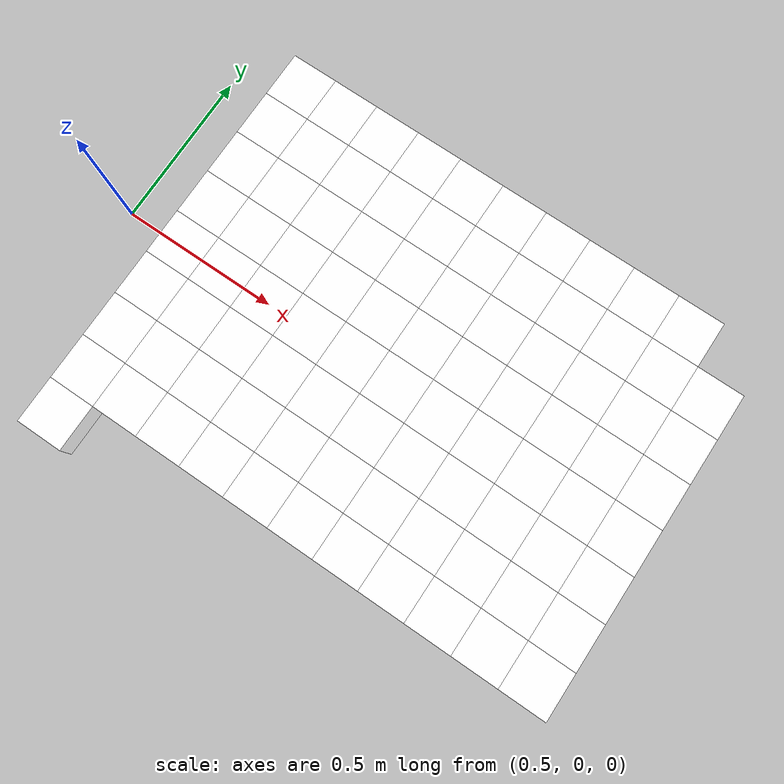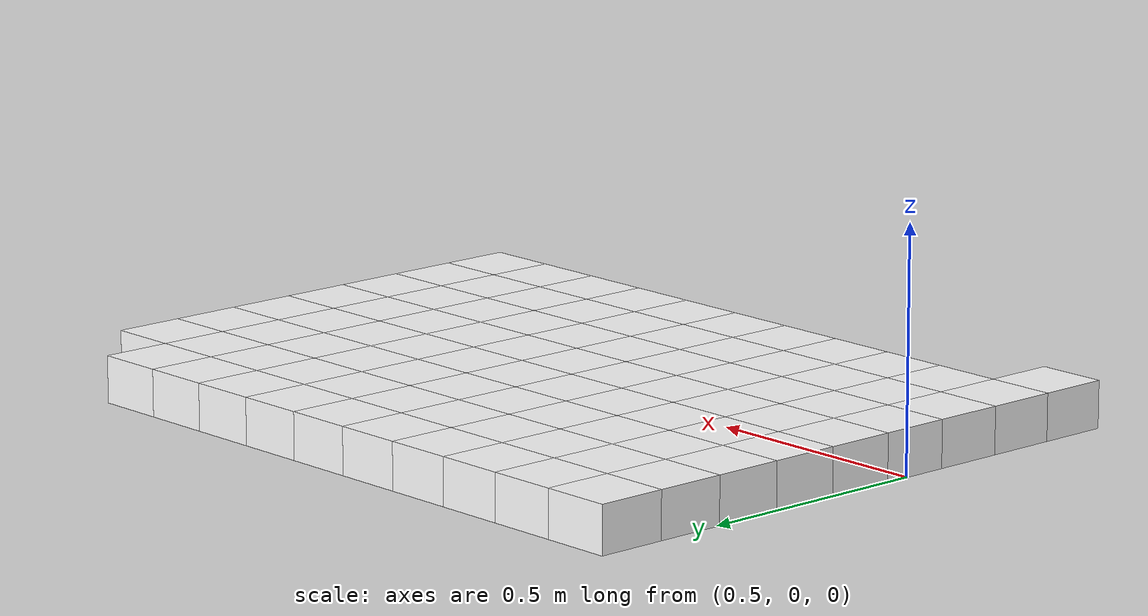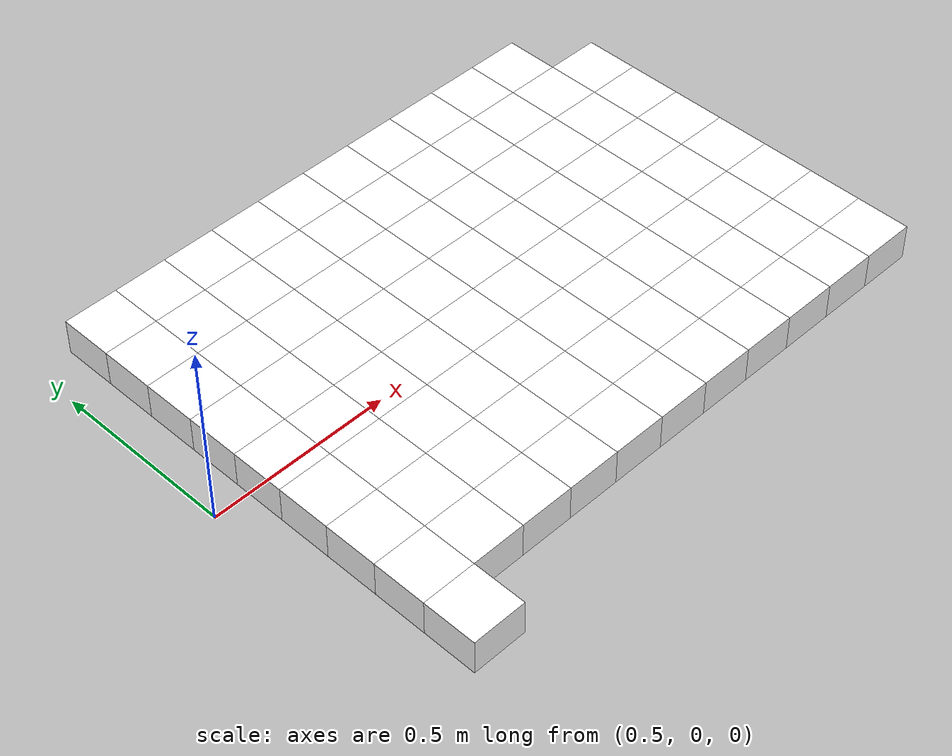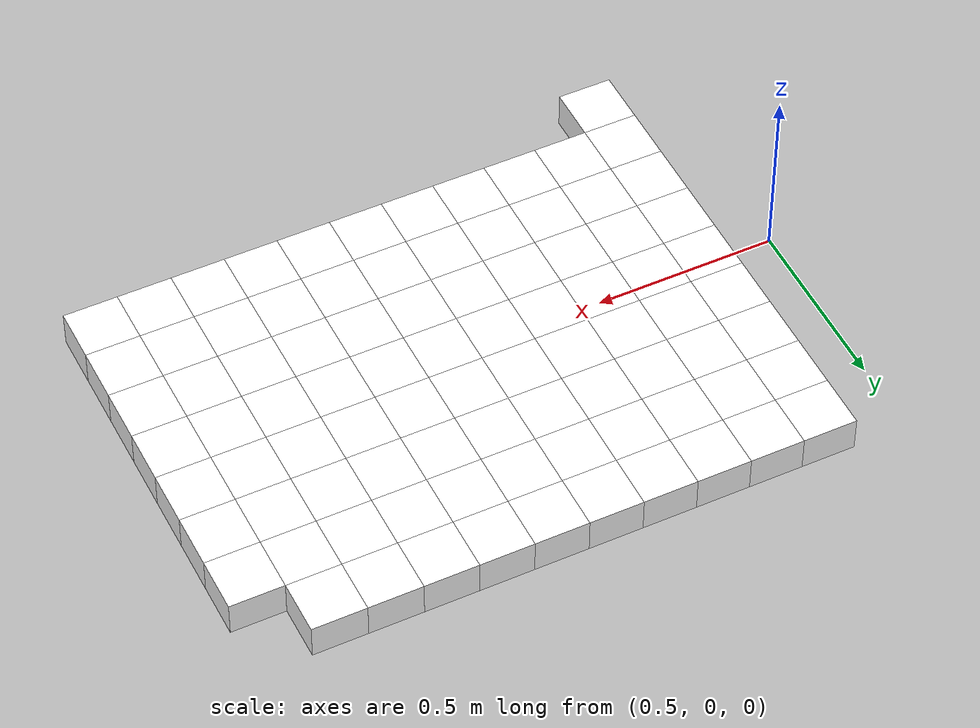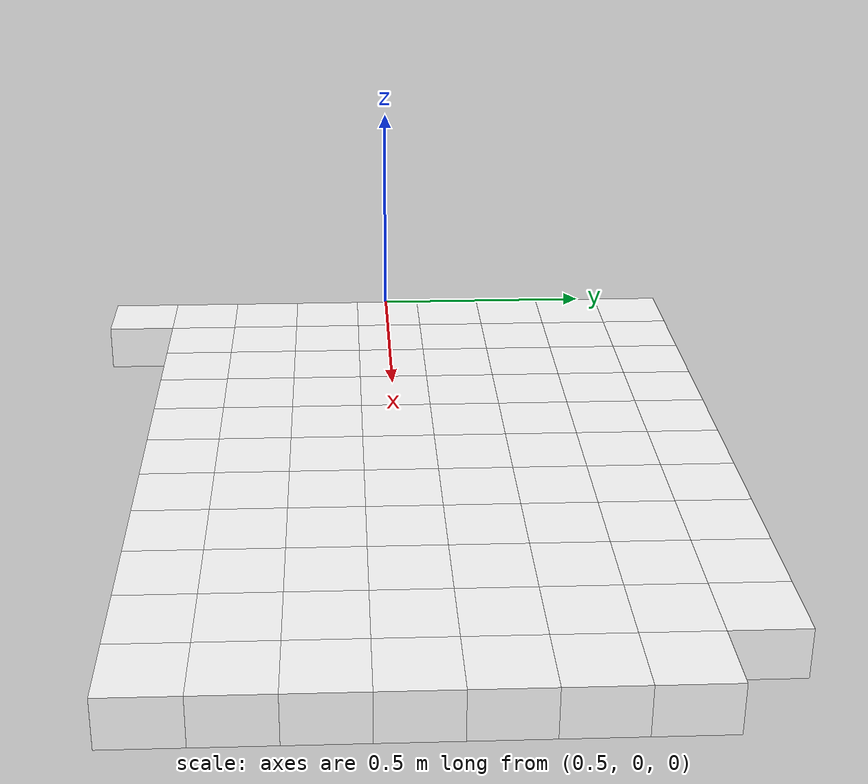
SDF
<sdf version="1.7">
 <world name="default">
  <include><uri>model://sun</uri></include>
  <model name="static_environment">
   <static>true</static>
   <link name="region_360">
    <pose>0.6999999893113622 0.5997597529616542 0.0 0.0 0.0 4.7123</pose>
    <collision name="region_360_collision">
     <geometry><box><size>0.15 0.15 0.1</size></box></geometry>
     <surface><friction><ode><mu>1.0</mu><mu2>1.0</mu2></ode></friction></surface>
    </collision>
    <visual name="region_360_visual">
     <geometry><box><size>0.15 0.15 0.1</size></box></geometry>
     <material><ambient>1.0 1.0 1.0 1.0</ambient><diffuse>1.0 1.0 1.0 1.0</diffuse></material>
    </visual>
   </link>
   <link name="region_361">
    <pose>0.6999866422536765 0.4497597535554674 0.0 0.0 0.0 4.7123</pose>
    <collision name="region_361_collision">
     <geometry><box><size>0.15 0.15 0.1</size></box></geometry>
     <surface><friction><ode><mu>1.0</mu><mu2>1.0</mu2></ode></friction></surface>
    </collision>
    <visual name="region_361_visual">
     <geometry><box><size>0.15 0.15 0.1</size></box></geometry>
     <material><ambient>1.0 1.0 1.0 1.0</ambient><diffuse>1.0 1.0 1.0 1.0</diffuse></material>
    </visual>
   </link>
   <link name="region_362">
    <pose>0.6999732951959903 0.2997597541492806 0.0 0.0 0.0 4.7123</pose>
    <collision name="region_362_collision">
     <geometry><box><size>0.15 0.15 0.1</size></box></geometry>
     <surface><friction><ode><mu>1.0</mu><mu2>1.0</mu2></ode></friction></surface>
    </collision>
    <visual name="region_362_visual">
     <geometry><box><size>0.15 0.15 0.1</size></box></geometry>
     <material><ambient>1.0 1.0 1.0 1.0</ambient><diffuse>1.0 1.0 1.0 1.0</diffuse></material>
    </visual>
   </link>
   <link name="region_363">
    <pose>0.6999599481383045 0.14975975474309378 0.0 0.0 0.0 4.7123</pose>
    <collision name="region_363_collision">
     <geometry><box><size>0.15 0.15 0.1</size></box></geometry>
     <surface><friction><ode><mu>1.0</mu><mu2>1.0</mu2></ode></friction></surface>
    </collision>
    <visual name="region_363_visual">
     <geometry><box><size>0.15 0.15 0.1</size></box></geometry>
     <material><ambient>1.0 1.0 1.0 1.0</ambient><diffuse>1.0 1.0 1.0 1.0</diffuse></material>
    </visual>
   </link>
   <link name="region_364">
    <pose>0.6999466010806188 -0.00024024466309313652 0.0 0.0 0.0 4.7123</pose>
    <collision name="region_364_collision">
     <geometry><box><size>0.15 0.15 0.1</size></box></geometry>
     <surface><friction><ode><mu>1.0</mu><mu2>1.0</mu2></ode></friction></surface>
    </collision>
    <visual name="region_364_visual">
     <geometry><box><size>0.15 0.15 0.1</size></box></geometry>
     <material><ambient>1.0 1.0 1.0 1.0</ambient><diffuse>1.0 1.0 1.0 1.0</diffuse></material>
    </visual>
   </link>
   <link name="region_365">
    <pose>0.6999332540229326 -0.15024024406927994 0.0 0.0 0.0 4.7123</pose>
    <collision name="region_365_collision">
     <geometry><box><size>0.15 0.15 0.1</size></box></geometry>
     <surface><friction><ode><mu>1.0</mu><mu2>1.0</mu2></ode></friction></surface>
    </collision>
    <visual name="region_365_visual">
     <geometry><box><size>0.15 0.15 0.1</size></box></geometry>
     <material><ambient>1.0 1.0 1.0 1.0</ambient><diffuse>1.0 1.0 1.0 1.0</diffuse></material>
    </visual>
   </link>
   <link name="region_366">
    <pose>0.6999199069652469 -0.30024024347546685 0.0 0.0 0.0 4.7123</pose>
    <collision name="region_366_collision">
     <geometry><box><size>0.15 0.15 0.1</size></box></geometry>
     <surface><friction><ode><mu>1.0</mu><mu2>1.0</mu2></ode></friction></surface>
    </collision>
    <visual name="region_366_visual">
     <geometry><box><size>0.15 0.15 0.1</size></box></geometry>
     <material><ambient>1.0 1.0 1.0 1.0</ambient><diffuse>1.0 1.0 1.0 1.0</diffuse></material>
    </visual>
   </link>
   <link name="region_367">
    <pose>0.6999065599075611 -0.45024024288165376 0.0 0.0 0.0 4.7123</pose>
    <collision name="region_367_collision">
     <geometry><box><size>0.15 0.15 0.1</size></box></geometry>
     <surface><friction><ode><mu>1.0</mu><mu2>1.0</mu2></ode></friction></surface>
    </collision>
    <visual name="region_367_visual">
     <geometry><box><size>0.15 0.15 0.1</size></box></geometry>
     <material><ambient>1.0 1.0 1.0 1.0</ambient><diffuse>1.0 1.0 1.0 1.0</diffuse></material>
    </visual>
   </link>
   <link name="region_368">
    <pose>0.6998932128498754 -0.6002402422878405 0.0 0.0 0.0 4.7123</pose>
    <collision name="region_368_collision">
     <geometry><box><size>0.15 0.15 0.1</size></box></geometry>
     <surface><friction><ode><mu>1.0</mu><mu2>1.0</mu2></ode></friction></surface>
    </collision>
    <visual name="region_368_visual">
     <geometry><box><size>0.15 0.15 0.1</size></box></geometry>
     <material><ambient>1.0 1.0 1.0 1.0</ambient><diffuse>1.0 1.0 1.0 1.0</diffuse></material>
    </visual>
   </link>
   <link name="region_380">
    <pose>0.8499999887175491 0.5997464059039683 0.0 0.0 0.0 4.7123</pose>
    <collision name="region_380_collision">
     <geometry><box><size>0.15 0.15 0.1</size></box></geometry>
     <surface><friction><ode><mu>1.0</mu><mu2>1.0</mu2></ode></friction></surface>
    </collision>
    <visual name="region_380_visual">
     <geometry><box><size>0.15 0.15 0.1</size></box></geometry>
     <material><ambient>1.0 1.0 1.0 1.0</ambient><diffuse>1.0 1.0 1.0 1.0</diffuse></material>
    </visual>
   </link>
   <link name="region_381">
    <pose>0.8499866416598634 0.4497464064977815 0.0 0.0 0.0 4.7123</pose>
    <collision name="region_381_collision">
     <geometry><box><size>0.15 0.15 0.1</size></box></geometry>
     <surface><friction><ode><mu>1.0</mu><mu2>1.0</mu2></ode></friction></surface>
    </collision>
    <visual name="region_381_visual">
     <geometry><box><size>0.15 0.15 0.1</size></box></geometry>
     <material><ambient>1.0 1.0 1.0 1.0</ambient><diffuse>1.0 1.0 1.0 1.0</diffuse></material>
    </visual>
   </link>
   <link name="region_382">
    <pose>0.8499732946021772 0.29974640709159467 0.0 0.0 0.0 4.7123</pose>
    <collision name="region_382_collision">
     <geometry><box><size>0.15 0.15 0.1</size></box></geometry>
     <surface><friction><ode><mu>1.0</mu><mu2>1.0</mu2></ode></friction></surface>
    </collision>
    <visual name="region_382_visual">
     <geometry><box><size>0.15 0.15 0.1</size></box></geometry>
     <material><ambient>1.0 1.0 1.0 1.0</ambient><diffuse>1.0 1.0 1.0 1.0</diffuse></material>
    </visual>
   </link>
   <link name="region_383">
    <pose>0.8499599475444914 0.14974640768540787 0.0 0.0 0.0 4.7123</pose>
    <collision name="region_383_collision">
     <geometry><box><size>0.15 0.15 0.1</size></box></geometry>
     <surface><friction><ode><mu>1.0</mu><mu2>1.0</mu2></ode></friction></surface>
    </collision>
    <visual name="region_383_visual">
     <geometry><box><size>0.15 0.15 0.1</size></box></geometry>
     <material><ambient>1.0 1.0 1.0 1.0</ambient><diffuse>1.0 1.0 1.0 1.0</diffuse></material>
    </visual>
   </link>
   <link name="region_384">
    <pose>0.8499466004868057 -0.0002535917207789895 0.0 0.0 0.0 4.7123</pose>
    <collision name="region_384_collision">
     <geometry><box><size>0.15 0.15 0.1</size></box></geometry>
     <surface><friction><ode><mu>1.0</mu><mu2>1.0</mu2></ode></friction></surface>
    </collision>
    <visual name="region_384_visual">
     <geometry><box><size>0.15 0.15 0.1</size></box></geometry>
     <material><ambient>1.0 1.0 1.0 1.0</ambient><diffuse>1.0 1.0 1.0 1.0</diffuse></material>
    </visual>
   </link>
   <link name="region_385">
    <pose>0.8499332534291195 -0.1502535911269658 0.0 0.0 0.0 4.7123</pose>
    <collision name="region_385_collision">
     <geometry><box><size>0.15 0.15 0.1</size></box></geometry>
     <surface><friction><ode><mu>1.0</mu><mu2>1.0</mu2></ode></friction></surface>
    </collision>
    <visual name="region_385_visual">
     <geometry><box><size>0.15 0.15 0.1</size></box></geometry>
     <material><ambient>1.0 1.0 1.0 1.0</ambient><diffuse>1.0 1.0 1.0 1.0</diffuse></material>
    </visual>
   </link>
   <link name="region_386">
    <pose>0.8499199063714338 -0.3002535905331527 0.0 0.0 0.0 4.7123</pose>
    <collision name="region_386_collision">
     <geometry><box><size>0.15 0.15 0.1</size></box></geometry>
     <surface><friction><ode><mu>1.0</mu><mu2>1.0</mu2></ode></friction></surface>
    </collision>
    <visual name="region_386_visual">
     <geometry><box><size>0.15 0.15 0.1</size></box></geometry>
     <material><ambient>1.0 1.0 1.0 1.0</ambient><diffuse>1.0 1.0 1.0 1.0</diffuse></material>
    </visual>
   </link>
   <link name="region_387">
    <pose>0.849906559313748 -0.4502535899393395 0.0 0.0 0.0 4.7123</pose>
    <collision name="region_387_collision">
     <geometry><box><size>0.15 0.15 0.1</size></box></geometry>
     <surface><friction><ode><mu>1.0</mu><mu2>1.0</mu2></ode></friction></surface>
    </collision>
    <visual name="region_387_visual">
     <geometry><box><size>0.15 0.15 0.1</size></box></geometry>
     <material><ambient>1.0 1.0 1.0 1.0</ambient><diffuse>1.0 1.0 1.0 1.0</diffuse></material>
    </visual>
   </link>
   <link name="region_400">
    <pose>0.999999988123736 0.5997330588462825 0.0 0.0 0.0 4.7123</pose>
    <collision name="region_400_collision">
     <geometry><box><size>0.15 0.15 0.1</size></box></geometry>
     <surface><friction><ode><mu>1.0</mu><mu2>1.0</mu2></ode></friction></surface>
    </collision>
    <visual name="region_400_visual">
     <geometry><box><size>0.15 0.15 0.1</size></box></geometry>
     <material><ambient>1.0 1.0 1.0 1.0</ambient><diffuse>1.0 1.0 1.0 1.0</diffuse></material>
    </visual>
   </link>
   <link name="region_401">
    <pose>0.9999866410660503 0.4497330594400956 0.0 0.0 0.0 4.7123</pose>
    <collision name="region_401_collision">
     <geometry><box><size>0.15 0.15 0.1</size></box></geometry>
     <surface><friction><ode><mu>1.0</mu><mu2>1.0</mu2></ode></friction></surface>
    </collision>
    <visual name="region_401_visual">
     <geometry><box><size>0.15 0.15 0.1</size></box></geometry>
     <material><ambient>1.0 1.0 1.0 1.0</ambient><diffuse>1.0 1.0 1.0 1.0</diffuse></material>
    </visual>
   </link>
   <link name="region_402">
    <pose>0.9999732940083641 0.2997330600339088 0.0 0.0 0.0 4.7123</pose>
    <collision name="region_402_collision">
     <geometry><box><size>0.15 0.15 0.1</size></box></geometry>
     <surface><friction><ode><mu>1.0</mu><mu2>1.0</mu2></ode></friction></surface>
    </collision>
    <visual name="region_402_visual">
     <geometry><box><size>0.15 0.15 0.1</size></box></geometry>
     <material><ambient>1.0 1.0 1.0 1.0</ambient><diffuse>1.0 1.0 1.0 1.0</diffuse></material>
    </visual>
   </link>
   <link name="region_403">
    <pose>0.9999599469506784 0.14973306062772201 0.0 0.0 0.0 4.7123</pose>
    <collision name="region_403_collision">
     <geometry><box><size>0.15 0.15 0.1</size></box></geometry>
     <surface><friction><ode><mu>1.0</mu><mu2>1.0</mu2></ode></friction></surface>
    </collision>
    <visual name="region_403_visual">
     <geometry><box><size>0.15 0.15 0.1</size></box></geometry>
     <material><ambient>1.0 1.0 1.0 1.0</ambient><diffuse>1.0 1.0 1.0 1.0</diffuse></material>
    </visual>
   </link>
   <link name="region_404">
    <pose>0.9999465998929926 -0.0002669387784648425 0.0 0.0 0.0 4.7123</pose>
    <collision name="region_404_collision">
     <geometry><box><size>0.15 0.15 0.1</size></box></geometry>
     <surface><friction><ode><mu>1.0</mu><mu2>1.0</mu2></ode></friction></surface>
    </collision>
    <visual name="region_404_visual">
     <geometry><box><size>0.15 0.15 0.1</size></box></geometry>
     <material><ambient>1.0 1.0 1.0 1.0</ambient><diffuse>1.0 1.0 1.0 1.0</diffuse></material>
    </visual>
   </link>
   <link name="region_405">
    <pose>0.9999332528353064 -0.15026693818465164 0.0 0.0 0.0 4.7123</pose>
    <collision name="region_405_collision">
     <geometry><box><size>0.15 0.15 0.1</size></box></geometry>
     <surface><friction><ode><mu>1.0</mu><mu2>1.0</mu2></ode></friction></surface>
    </collision>
    <visual name="region_405_visual">
     <geometry><box><size>0.15 0.15 0.1</size></box></geometry>
     <material><ambient>1.0 1.0 1.0 1.0</ambient><diffuse>1.0 1.0 1.0 1.0</diffuse></material>
    </visual>
   </link>
   <link name="region_406">
    <pose>0.9999199057776207 -0.30026693759083856 0.0 0.0 0.0 4.7123</pose>
    <collision name="region_406_collision">
     <geometry><box><size>0.15 0.15 0.1</size></box></geometry>
     <surface><friction><ode><mu>1.0</mu><mu2>1.0</mu2></ode></friction></surface>
    </collision>
    <visual name="region_406_visual">
     <geometry><box><size>0.15 0.15 0.1</size></box></geometry>
     <material><ambient>1.0 1.0 1.0 1.0</ambient><diffuse>1.0 1.0 1.0 1.0</diffuse></material>
    </visual>
   </link>
   <link name="region_407">
    <pose>0.999906558719935 -0.45026693699702547 0.0 0.0 0.0 4.7123</pose>
    <collision name="region_407_collision">
     <geometry><box><size>0.15 0.15 0.1</size></box></geometry>
     <surface><friction><ode><mu>1.0</mu><mu2>1.0</mu2></ode></friction></surface>
    </collision>
    <visual name="region_407_visual">
     <geometry><box><size>0.15 0.15 0.1</size></box></geometry>
     <material><ambient>1.0 1.0 1.0 1.0</ambient><diffuse>1.0 1.0 1.0 1.0</diffuse></material>
    </visual>
   </link>
   <link name="region_420">
    <pose>1.1499999875299225 0.5997197117885966 0.0 0.0 0.0 4.7123</pose>
    <collision name="region_420_collision">
     <geometry><box><size>0.15 0.15 0.1</size></box></geometry>
     <surface><friction><ode><mu>1.0</mu><mu2>1.0</mu2></ode></friction></surface>
    </collision>
    <visual name="region_420_visual">
     <geometry><box><size>0.15 0.15 0.1</size></box></geometry>
     <material><ambient>1.0 1.0 1.0 1.0</ambient><diffuse>1.0 1.0 1.0 1.0</diffuse></material>
    </visual>
   </link>
   <link name="region_421">
    <pose>1.1499866404722368 0.44971971238240976 0.0 0.0 0.0 4.7123</pose>
    <collision name="region_421_collision">
     <geometry><box><size>0.15 0.15 0.1</size></box></geometry>
     <surface><friction><ode><mu>1.0</mu><mu2>1.0</mu2></ode></friction></surface>
    </collision>
    <visual name="region_421_visual">
     <geometry><box><size>0.15 0.15 0.1</size></box></geometry>
     <material><ambient>1.0 1.0 1.0 1.0</ambient><diffuse>1.0 1.0 1.0 1.0</diffuse></material>
    </visual>
   </link>
   <link name="region_422">
    <pose>1.1499732934145506 0.2997197129762229 0.0 0.0 0.0 4.7123</pose>
    <collision name="region_422_collision">
     <geometry><box><size>0.15 0.15 0.1</size></box></geometry>
     <surface><friction><ode><mu>1.0</mu><mu2>1.0</mu2></ode></friction></surface>
    </collision>
    <visual name="region_422_visual">
     <geometry><box><size>0.15 0.15 0.1</size></box></geometry>
     <material><ambient>1.0 1.0 1.0 1.0</ambient><diffuse>1.0 1.0 1.0 1.0</diffuse></material>
    </visual>
   </link>
   <link name="region_423">
    <pose>1.1499599463568648 0.1497197135700361 0.0 0.0 0.0 4.7123</pose>
    <collision name="region_423_collision">
     <geometry><box><size>0.15 0.15 0.1</size></box></geometry>
     <surface><friction><ode><mu>1.0</mu><mu2>1.0</mu2></ode></friction></surface>
    </collision>
    <visual name="region_423_visual">
     <geometry><box><size>0.15 0.15 0.1</size></box></geometry>
     <material><ambient>1.0 1.0 1.0 1.0</ambient><diffuse>1.0 1.0 1.0 1.0</diffuse></material>
    </visual>
   </link>
   <link name="region_424">
    <pose>1.149946599299179 -0.00028028583615069547 0.0 0.0 0.0 4.7123</pose>
    <collision name="region_424_collision">
     <geometry><box><size>0.15 0.15 0.1</size></box></geometry>
     <surface><friction><ode><mu>1.0</mu><mu2>1.0</mu2></ode></friction></surface>
    </collision>
    <visual name="region_424_visual">
     <geometry><box><size>0.15 0.15 0.1</size></box></geometry>
     <material><ambient>1.0 1.0 1.0 1.0</ambient><diffuse>1.0 1.0 1.0 1.0</diffuse></material>
    </visual>
   </link>
   <link name="region_425">
    <pose>1.149933252241493 -0.1502802852423375 0.0 0.0 0.0 4.7123</pose>
    <collision name="region_425_collision">
     <geometry><box><size>0.15 0.15 0.1</size></box></geometry>
     <surface><friction><ode><mu>1.0</mu><mu2>1.0</mu2></ode></friction></surface>
    </collision>
    <visual name="region_425_visual">
     <geometry><box><size>0.15 0.15 0.1</size></box></geometry>
     <material><ambient>1.0 1.0 1.0 1.0</ambient><diffuse>1.0 1.0 1.0 1.0</diffuse></material>
    </visual>
   </link>
   <link name="region_426">
    <pose>1.1499199051838072 -0.3002802846485244 0.0 0.0 0.0 4.7123</pose>
    <collision name="region_426_collision">
     <geometry><box><size>0.15 0.15 0.1</size></box></geometry>
     <surface><friction><ode><mu>1.0</mu><mu2>1.0</mu2></ode></friction></surface>
    </collision>
    <visual name="region_426_visual">
     <geometry><box><size>0.15 0.15 0.1</size></box></geometry>
     <material><ambient>1.0 1.0 1.0 1.0</ambient><diffuse>1.0 1.0 1.0 1.0</diffuse></material>
    </visual>
   </link>
   <link name="region_427">
    <pose>1.1499065581261214 -0.45028028405471143 0.0 0.0 0.0 4.7123</pose>
    <collision name="region_427_collision">
     <geometry><box><size>0.15 0.15 0.1</size></box></geometry>
     <surface><friction><ode><mu>1.0</mu><mu2>1.0</mu2></ode></friction></surface>
    </collision>
    <visual name="region_427_visual">
     <geometry><box><size>0.15 0.15 0.1</size></box></geometry>
     <material><ambient>1.0 1.0 1.0 1.0</ambient><diffuse>1.0 1.0 1.0 1.0</diffuse></material>
    </visual>
   </link>
   <link name="region_440">
    <pose>1.2999999869361094 0.5997063647309107 0.0 0.0 0.0 4.7123</pose>
    <collision name="region_440_collision">
     <geometry><box><size>0.15 0.15 0.1</size></box></geometry>
     <surface><friction><ode><mu>1.0</mu><mu2>1.0</mu2></ode></friction></surface>
    </collision>
    <visual name="region_440_visual">
     <geometry><box><size>0.15 0.15 0.1</size></box></geometry>
     <material><ambient>1.0 1.0 1.0 1.0</ambient><diffuse>1.0 1.0 1.0 1.0</diffuse></material>
    </visual>
   </link>
   <link name="region_441">
    <pose>1.2999866398784237 0.44970636532472386 0.0 0.0 0.0 4.7123</pose>
    <collision name="region_441_collision">
     <geometry><box><size>0.15 0.15 0.1</size></box></geometry>
     <surface><friction><ode><mu>1.0</mu><mu2>1.0</mu2></ode></friction></surface>
    </collision>
    <visual name="region_441_visual">
     <geometry><box><size>0.15 0.15 0.1</size></box></geometry>
     <material><ambient>1.0 1.0 1.0 1.0</ambient><diffuse>1.0 1.0 1.0 1.0</diffuse></material>
    </visual>
   </link>
   <link name="region_442">
    <pose>1.2999732928207375 0.29970636591853705 0.0 0.0 0.0 4.7123</pose>
    <collision name="region_442_collision">
     <geometry><box><size>0.15 0.15 0.1</size></box></geometry>
     <surface><friction><ode><mu>1.0</mu><mu2>1.0</mu2></ode></friction></surface>
    </collision>
    <visual name="region_442_visual">
     <geometry><box><size>0.15 0.15 0.1</size></box></geometry>
     <material><ambient>1.0 1.0 1.0 1.0</ambient><diffuse>1.0 1.0 1.0 1.0</diffuse></material>
    </visual>
   </link>
   <link name="region_443">
    <pose>1.2999599457630517 0.14970636651235025 0.0 0.0 0.0 4.7123</pose>
    <collision name="region_443_collision">
     <geometry><box><size>0.15 0.15 0.1</size></box></geometry>
     <surface><friction><ode><mu>1.0</mu><mu2>1.0</mu2></ode></friction></surface>
    </collision>
    <visual name="region_443_visual">
     <geometry><box><size>0.15 0.15 0.1</size></box></geometry>
     <material><ambient>1.0 1.0 1.0 1.0</ambient><diffuse>1.0 1.0 1.0 1.0</diffuse></material>
    </visual>
   </link>
   <link name="region_444">
    <pose>1.299946598705366 -0.00029363289383665947 0.0 0.0 0.0 4.7123</pose>
    <collision name="region_444_collision">
     <geometry><box><size>0.15 0.15 0.1</size></box></geometry>
     <surface><friction><ode><mu>1.0</mu><mu2>1.0</mu2></ode></friction></surface>
    </collision>
    <visual name="region_444_visual">
     <geometry><box><size>0.15 0.15 0.1</size></box></geometry>
     <material><ambient>1.0 1.0 1.0 1.0</ambient><diffuse>1.0 1.0 1.0 1.0</diffuse></material>
    </visual>
   </link>
   <link name="region_445">
    <pose>1.2999332516476798 -0.15029363230002346 0.0 0.0 0.0 4.7123</pose>
    <collision name="region_445_collision">
     <geometry><box><size>0.15 0.15 0.1</size></box></geometry>
     <surface><friction><ode><mu>1.0</mu><mu2>1.0</mu2></ode></friction></surface>
    </collision>
    <visual name="region_445_visual">
     <geometry><box><size>0.15 0.15 0.1</size></box></geometry>
     <material><ambient>1.0 1.0 1.0 1.0</ambient><diffuse>1.0 1.0 1.0 1.0</diffuse></material>
    </visual>
   </link>
   <link name="region_446">
    <pose>1.299919904589994 -0.3002936317062104 0.0 0.0 0.0 4.7123</pose>
    <collision name="region_446_collision">
     <geometry><box><size>0.15 0.15 0.1</size></box></geometry>
     <surface><friction><ode><mu>1.0</mu><mu2>1.0</mu2></ode></friction></surface>
    </collision>
    <visual name="region_446_visual">
     <geometry><box><size>0.15 0.15 0.1</size></box></geometry>
     <material><ambient>1.0 1.0 1.0 1.0</ambient><diffuse>1.0 1.0 1.0 1.0</diffuse></material>
    </visual>
   </link>
   <link name="region_447">
    <pose>1.2999065575323083 -0.4502936311123972 0.0 0.0 0.0 4.7123</pose>
    <collision name="region_447_collision">
     <geometry><box><size>0.15 0.15 0.1</size></box></geometry>
     <surface><friction><ode><mu>1.0</mu><mu2>1.0</mu2></ode></friction></surface>
    </collision>
    <visual name="region_447_visual">
     <geometry><box><size>0.15 0.15 0.1</size></box></geometry>
     <material><ambient>1.0 1.0 1.0 1.0</ambient><diffuse>1.0 1.0 1.0 1.0</diffuse></material>
    </visual>
   </link>
   <link name="region_460">
    <pose>1.4499999863422959 0.5996930176732248 0.0 0.0 0.0 4.7123</pose>
    <collision name="region_460_collision">
     <geometry><box><size>0.15 0.15 0.1</size></box></geometry>
     <surface><friction><ode><mu>1.0</mu><mu2>1.0</mu2></ode></friction></surface>
    </collision>
    <visual name="region_460_visual">
     <geometry><box><size>0.15 0.15 0.1</size></box></geometry>
     <material><ambient>1.0 1.0 1.0 1.0</ambient><diffuse>1.0 1.0 1.0 1.0</diffuse></material>
    </visual>
   </link>
   <link name="region_461">
    <pose>1.4499866392846101 0.449693018267038 0.0 0.0 0.0 4.7123</pose>
    <collision name="region_461_collision">
     <geometry><box><size>0.15 0.15 0.1</size></box></geometry>
     <surface><friction><ode><mu>1.0</mu><mu2>1.0</mu2></ode></friction></surface>
    </collision>
    <visual name="region_461_visual">
     <geometry><box><size>0.15 0.15 0.1</size></box></geometry>
     <material><ambient>1.0 1.0 1.0 1.0</ambient><diffuse>1.0 1.0 1.0 1.0</diffuse></material>
    </visual>
   </link>
   <link name="region_462">
    <pose>1.449973292226924 0.29969301886085115 0.0 0.0 0.0 4.7123</pose>
    <collision name="region_462_collision">
     <geometry><box><size>0.15 0.15 0.1</size></box></geometry>
     <surface><friction><ode><mu>1.0</mu><mu2>1.0</mu2></ode></friction></surface>
    </collision>
    <visual name="region_462_visual">
     <geometry><box><size>0.15 0.15 0.1</size></box></geometry>
     <material><ambient>1.0 1.0 1.0 1.0</ambient><diffuse>1.0 1.0 1.0 1.0</diffuse></material>
    </visual>
   </link>
   <link name="region_463">
    <pose>1.4499599451692382 0.14969301945466434 0.0 0.0 0.0 4.7123</pose>
    <collision name="region_463_collision">
     <geometry><box><size>0.15 0.15 0.1</size></box></geometry>
     <surface><friction><ode><mu>1.0</mu><mu2>1.0</mu2></ode></friction></surface>
    </collision>
    <visual name="region_463_visual">
     <geometry><box><size>0.15 0.15 0.1</size></box></geometry>
     <material><ambient>1.0 1.0 1.0 1.0</ambient><diffuse>1.0 1.0 1.0 1.0</diffuse></material>
    </visual>
   </link>
   <link name="region_464">
    <pose>1.4499465981115525 -0.00030697995152251245 0.0 0.0 0.0 4.7123</pose>
    <collision name="region_464_collision">
     <geometry><box><size>0.15 0.15 0.1</size></box></geometry>
     <surface><friction><ode><mu>1.0</mu><mu2>1.0</mu2></ode></friction></surface>
    </collision>
    <visual name="region_464_visual">
     <geometry><box><size>0.15 0.15 0.1</size></box></geometry>
     <material><ambient>1.0 1.0 1.0 1.0</ambient><diffuse>1.0 1.0 1.0 1.0</diffuse></material>
    </visual>
   </link>
   <link name="region_465">
    <pose>1.4499332510538663 -0.1503069793577093 0.0 0.0 0.0 4.7123</pose>
    <collision name="region_465_collision">
     <geometry><box><size>0.15 0.15 0.1</size></box></geometry>
     <surface><friction><ode><mu>1.0</mu><mu2>1.0</mu2></ode></friction></surface>
    </collision>
    <visual name="region_465_visual">
     <geometry><box><size>0.15 0.15 0.1</size></box></geometry>
     <material><ambient>1.0 1.0 1.0 1.0</ambient><diffuse>1.0 1.0 1.0 1.0</diffuse></material>
    </visual>
   </link>
   <link name="region_466">
    <pose>1.4499199039961805 -0.3003069787638962 0.0 0.0 0.0 4.7123</pose>
    <collision name="region_466_collision">
     <geometry><box><size>0.15 0.15 0.1</size></box></geometry>
     <surface><friction><ode><mu>1.0</mu><mu2>1.0</mu2></ode></friction></surface>
    </collision>
    <visual name="region_466_visual">
     <geometry><box><size>0.15 0.15 0.1</size></box></geometry>
     <material><ambient>1.0 1.0 1.0 1.0</ambient><diffuse>1.0 1.0 1.0 1.0</diffuse></material>
    </visual>
   </link>
   <link name="region_467">
    <pose>1.4499065569384948 -0.45030697817008314 0.0 0.0 0.0 4.7123</pose>
    <collision name="region_467_collision">
     <geometry><box><size>0.15 0.15 0.1</size></box></geometry>
     <surface><friction><ode><mu>1.0</mu><mu2>1.0</mu2></ode></friction></surface>
    </collision>
    <visual name="region_467_visual">
     <geometry><box><size>0.15 0.15 0.1</size></box></geometry>
     <material><ambient>1.0 1.0 1.0 1.0</ambient><diffuse>1.0 1.0 1.0 1.0</diffuse></material>
    </visual>
   </link>
   <link name="region_480">
    <pose>1.5999999857484828 0.599679670615539 0.0 0.0 0.0 4.7123</pose>
    <collision name="region_480_collision">
     <geometry><box><size>0.15 0.15 0.1</size></box></geometry>
     <surface><friction><ode><mu>1.0</mu><mu2>1.0</mu2></ode></friction></surface>
    </collision>
    <visual name="region_480_visual">
     <geometry><box><size>0.15 0.15 0.1</size></box></geometry>
     <material><ambient>1.0 1.0 1.0 1.0</ambient><diffuse>1.0 1.0 1.0 1.0</diffuse></material>
    </visual>
   </link>
   <link name="region_481">
    <pose>1.599986638690797 0.44967967120935215 0.0 0.0 0.0 4.7123</pose>
    <collision name="region_481_collision">
     <geometry><box><size>0.15 0.15 0.1</size></box></geometry>
     <surface><friction><ode><mu>1.0</mu><mu2>1.0</mu2></ode></friction></surface>
    </collision>
    <visual name="region_481_visual">
     <geometry><box><size>0.15 0.15 0.1</size></box></geometry>
     <material><ambient>1.0 1.0 1.0 1.0</ambient><diffuse>1.0 1.0 1.0 1.0</diffuse></material>
    </visual>
   </link>
   <link name="region_482">
    <pose>1.5999732916331109 0.2996796718031653 0.0 0.0 0.0 4.7123</pose>
    <collision name="region_482_collision">
     <geometry><box><size>0.15 0.15 0.1</size></box></geometry>
     <surface><friction><ode><mu>1.0</mu><mu2>1.0</mu2></ode></friction></surface>
    </collision>
    <visual name="region_482_visual">
     <geometry><box><size>0.15 0.15 0.1</size></box></geometry>
     <material><ambient>1.0 1.0 1.0 1.0</ambient><diffuse>1.0 1.0 1.0 1.0</diffuse></material>
    </visual>
   </link>
   <link name="region_483">
    <pose>1.5999599445754251 0.1496796723969785 0.0 0.0 0.0 4.7123</pose>
    <collision name="region_483_collision">
     <geometry><box><size>0.15 0.15 0.1</size></box></geometry>
     <surface><friction><ode><mu>1.0</mu><mu2>1.0</mu2></ode></friction></surface>
    </collision>
    <visual name="region_483_visual">
     <geometry><box><size>0.15 0.15 0.1</size></box></geometry>
     <material><ambient>1.0 1.0 1.0 1.0</ambient><diffuse>1.0 1.0 1.0 1.0</diffuse></material>
    </visual>
   </link>
   <link name="region_484">
    <pose>1.5999465975177394 -0.00032032700920836543 0.0 0.0 0.0 4.7123</pose>
    <collision name="region_484_collision">
     <geometry><box><size>0.15 0.15 0.1</size></box></geometry>
     <surface><friction><ode><mu>1.0</mu><mu2>1.0</mu2></ode></friction></surface>
    </collision>
    <visual name="region_484_visual">
     <geometry><box><size>0.15 0.15 0.1</size></box></geometry>
     <material><ambient>1.0 1.0 1.0 1.0</ambient><diffuse>1.0 1.0 1.0 1.0</diffuse></material>
    </visual>
   </link>
   <link name="region_485">
    <pose>1.5999332504600532 -0.15032032641539517 0.0 0.0 0.0 4.7123</pose>
    <collision name="region_485_collision">
     <geometry><box><size>0.15 0.15 0.1</size></box></geometry>
     <surface><friction><ode><mu>1.0</mu><mu2>1.0</mu2></ode></friction></surface>
    </collision>
    <visual name="region_485_visual">
     <geometry><box><size>0.15 0.15 0.1</size></box></geometry>
     <material><ambient>1.0 1.0 1.0 1.0</ambient><diffuse>1.0 1.0 1.0 1.0</diffuse></material>
    </visual>
   </link>
   <link name="region_486">
    <pose>1.5999199034023674 -0.3003203258215821 0.0 0.0 0.0 4.7123</pose>
    <collision name="region_486_collision">
     <geometry><box><size>0.15 0.15 0.1</size></box></geometry>
     <surface><friction><ode><mu>1.0</mu><mu2>1.0</mu2></ode></friction></surface>
    </collision>
    <visual name="region_486_visual">
     <geometry><box><size>0.15 0.15 0.1</size></box></geometry>
     <material><ambient>1.0 1.0 1.0 1.0</ambient><diffuse>1.0 1.0 1.0 1.0</diffuse></material>
    </visual>
   </link>
   <link name="region_487">
    <pose>1.5999065563446817 -0.4503203252277689 0.0 0.0 0.0 4.7123</pose>
    <collision name="region_487_collision">
     <geometry><box><size>0.15 0.15 0.1</size></box></geometry>
     <surface><friction><ode><mu>1.0</mu><mu2>1.0</mu2></ode></friction></surface>
    </collision>
    <visual name="region_487_visual">
     <geometry><box><size>0.15 0.15 0.1</size></box></geometry>
     <material><ambient>1.0 1.0 1.0 1.0</ambient><diffuse>1.0 1.0 1.0 1.0</diffuse></material>
    </visual>
   </link>
   <link name="region_500">
    <pose>1.7499999851546697 0.5996663235578531 0.0 0.0 0.0 4.7123</pose>
    <collision name="region_500_collision">
     <geometry><box><size>0.15 0.15 0.1</size></box></geometry>
     <surface><friction><ode><mu>1.0</mu><mu2>1.0</mu2></ode></friction></surface>
    </collision>
    <visual name="region_500_visual">
     <geometry><box><size>0.15 0.15 0.1</size></box></geometry>
     <material><ambient>1.0 1.0 1.0 1.0</ambient><diffuse>1.0 1.0 1.0 1.0</diffuse></material>
    </visual>
   </link>
   <link name="region_501">
    <pose>1.749986638096984 0.44966632415166624 0.0 0.0 0.0 4.7123</pose>
    <collision name="region_501_collision">
     <geometry><box><size>0.15 0.15 0.1</size></box></geometry>
     <surface><friction><ode><mu>1.0</mu><mu2>1.0</mu2></ode></friction></surface>
    </collision>
    <visual name="region_501_visual">
     <geometry><box><size>0.15 0.15 0.1</size></box></geometry>
     <material><ambient>1.0 1.0 1.0 1.0</ambient><diffuse>1.0 1.0 1.0 1.0</diffuse></material>
    </visual>
   </link>
   <link name="region_502">
    <pose>1.7499732910392978 0.29966632474547944 0.0 0.0 0.0 4.7123</pose>
    <collision name="region_502_collision">
     <geometry><box><size>0.15 0.15 0.1</size></box></geometry>
     <surface><friction><ode><mu>1.0</mu><mu2>1.0</mu2></ode></friction></surface>
    </collision>
    <visual name="region_502_visual">
     <geometry><box><size>0.15 0.15 0.1</size></box></geometry>
     <material><ambient>1.0 1.0 1.0 1.0</ambient><diffuse>1.0 1.0 1.0 1.0</diffuse></material>
    </visual>
   </link>
   <link name="region_503">
    <pose>1.749959943981612 0.14966632533929264 0.0 0.0 0.0 4.7123</pose>
    <collision name="region_503_collision">
     <geometry><box><size>0.15 0.15 0.1</size></box></geometry>
     <surface><friction><ode><mu>1.0</mu><mu2>1.0</mu2></ode></friction></surface>
    </collision>
    <visual name="region_503_visual">
     <geometry><box><size>0.15 0.15 0.1</size></box></geometry>
     <material><ambient>1.0 1.0 1.0 1.0</ambient><diffuse>1.0 1.0 1.0 1.0</diffuse></material>
    </visual>
   </link>
   <link name="region_504">
    <pose>1.7499465969239263 -0.0003336740668942184 0.0 0.0 0.0 4.7123</pose>
    <collision name="region_504_collision">
     <geometry><box><size>0.15 0.15 0.1</size></box></geometry>
     <surface><friction><ode><mu>1.0</mu><mu2>1.0</mu2></ode></friction></surface>
    </collision>
    <visual name="region_504_visual">
     <geometry><box><size>0.15 0.15 0.1</size></box></geometry>
     <material><ambient>1.0 1.0 1.0 1.0</ambient><diffuse>1.0 1.0 1.0 1.0</diffuse></material>
    </visual>
   </link>
   <link name="region_505">
    <pose>1.74993324986624 -0.15033367347308102 0.0 0.0 0.0 4.7123</pose>
    <collision name="region_505_collision">
     <geometry><box><size>0.15 0.15 0.1</size></box></geometry>
     <surface><friction><ode><mu>1.0</mu><mu2>1.0</mu2></ode></friction></surface>
    </collision>
    <visual name="region_505_visual">
     <geometry><box><size>0.15 0.15 0.1</size></box></geometry>
     <material><ambient>1.0 1.0 1.0 1.0</ambient><diffuse>1.0 1.0 1.0 1.0</diffuse></material>
    </visual>
   </link>
   <link name="region_506">
    <pose>1.7499199028085544 -0.30033367287926793 0.0 0.0 0.0 4.7123</pose>
    <collision name="region_506_collision">
     <geometry><box><size>0.15 0.15 0.1</size></box></geometry>
     <surface><friction><ode><mu>1.0</mu><mu2>1.0</mu2></ode></friction></surface>
    </collision>
    <visual name="region_506_visual">
     <geometry><box><size>0.15 0.15 0.1</size></box></geometry>
     <material><ambient>1.0 1.0 1.0 1.0</ambient><diffuse>1.0 1.0 1.0 1.0</diffuse></material>
    </visual>
   </link>
   <link name="region_507">
    <pose>1.7499065557508686 -0.45033367228545484 0.0 0.0 0.0 4.7123</pose>
    <collision name="region_507_collision">
     <geometry><box><size>0.15 0.15 0.1</size></box></geometry>
     <surface><friction><ode><mu>1.0</mu><mu2>1.0</mu2></ode></friction></surface>
    </collision>
    <visual name="region_507_visual">
     <geometry><box><size>0.15 0.15 0.1</size></box></geometry>
     <material><ambient>1.0 1.0 1.0 1.0</ambient><diffuse>1.0 1.0 1.0 1.0</diffuse></material>
    </visual>
   </link>
   <link name="region_520">
    <pose>1.8999999845608562 0.5996529765001672 0.0 0.0 0.0 4.7123</pose>
    <collision name="region_520_collision">
     <geometry><box><size>0.15 0.15 0.1</size></box></geometry>
     <surface><friction><ode><mu>1.0</mu><mu2>1.0</mu2></ode></friction></surface>
    </collision>
    <visual name="region_520_visual">
     <geometry><box><size>0.15 0.15 0.1</size></box></geometry>
     <material><ambient>1.0 1.0 1.0 1.0</ambient><diffuse>1.0 1.0 1.0 1.0</diffuse></material>
    </visual>
   </link>
   <link name="region_521">
    <pose>1.8999866375031704 0.44965297709398033 0.0 0.0 0.0 4.7123</pose>
    <collision name="region_521_collision">
     <geometry><box><size>0.15 0.15 0.1</size></box></geometry>
     <surface><friction><ode><mu>1.0</mu><mu2>1.0</mu2></ode></friction></surface>
    </collision>
    <visual name="region_521_visual">
     <geometry><box><size>0.15 0.15 0.1</size></box></geometry>
     <material><ambient>1.0 1.0 1.0 1.0</ambient><diffuse>1.0 1.0 1.0 1.0</diffuse></material>
    </visual>
   </link>
   <link name="region_522">
    <pose>1.8999732904454842 0.29965297768779353 0.0 0.0 0.0 4.7123</pose>
    <collision name="region_522_collision">
     <geometry><box><size>0.15 0.15 0.1</size></box></geometry>
     <surface><friction><ode><mu>1.0</mu><mu2>1.0</mu2></ode></friction></surface>
    </collision>
    <visual name="region_522_visual">
     <geometry><box><size>0.15 0.15 0.1</size></box></geometry>
     <material><ambient>1.0 1.0 1.0 1.0</ambient><diffuse>1.0 1.0 1.0 1.0</diffuse></material>
    </visual>
   </link>
   <link name="region_523">
    <pose>1.8999599433877985 0.14965297828160673 0.0 0.0 0.0 4.7123</pose>
    <collision name="region_523_collision">
     <geometry><box><size>0.15 0.15 0.1</size></box></geometry>
     <surface><friction><ode><mu>1.0</mu><mu2>1.0</mu2></ode></friction></surface>
    </collision>
    <visual name="region_523_visual">
     <geometry><box><size>0.15 0.15 0.1</size></box></geometry>
     <material><ambient>1.0 1.0 1.0 1.0</ambient><diffuse>1.0 1.0 1.0 1.0</diffuse></material>
    </visual>
   </link>
   <link name="region_524">
    <pose>1.8999465963301128 -0.0003470211245800714 0.0 0.0 0.0 4.7123</pose>
    <collision name="region_524_collision">
     <geometry><box><size>0.15 0.15 0.1</size></box></geometry>
     <surface><friction><ode><mu>1.0</mu><mu2>1.0</mu2></ode></friction></surface>
    </collision>
    <visual name="region_524_visual">
     <geometry><box><size>0.15 0.15 0.1</size></box></geometry>
     <material><ambient>1.0 1.0 1.0 1.0</ambient><diffuse>1.0 1.0 1.0 1.0</diffuse></material>
    </visual>
   </link>
   <link name="region_525">
    <pose>1.8999332492724266 -0.15034702053076687 0.0 0.0 0.0 4.7123</pose>
    <collision name="region_525_collision">
     <geometry><box><size>0.15 0.15 0.1</size></box></geometry>
     <surface><friction><ode><mu>1.0</mu><mu2>1.0</mu2></ode></friction></surface>
    </collision>
    <visual name="region_525_visual">
     <geometry><box><size>0.15 0.15 0.1</size></box></geometry>
     <material><ambient>1.0 1.0 1.0 1.0</ambient><diffuse>1.0 1.0 1.0 1.0</diffuse></material>
    </visual>
   </link>
   <link name="region_526">
    <pose>1.8999199022147408 -0.3003470199369538 0.0 0.0 0.0 4.7123</pose>
    <collision name="region_526_collision">
     <geometry><box><size>0.15 0.15 0.1</size></box></geometry>
     <surface><friction><ode><mu>1.0</mu><mu2>1.0</mu2></ode></friction></surface>
    </collision>
    <visual name="region_526_visual">
     <geometry><box><size>0.15 0.15 0.1</size></box></geometry>
     <material><ambient>1.0 1.0 1.0 1.0</ambient><diffuse>1.0 1.0 1.0 1.0</diffuse></material>
    </visual>
   </link>
   <link name="region_527">
    <pose>1.899906555157055 -0.4503470193431408 0.0 0.0 0.0 4.7123</pose>
    <collision name="region_527_collision">
     <geometry><box><size>0.15 0.15 0.1</size></box></geometry>
     <surface><friction><ode><mu>1.0</mu><mu2>1.0</mu2></ode></friction></surface>
    </collision>
    <visual name="region_527_visual">
     <geometry><box><size>0.15 0.15 0.1</size></box></geometry>
     <material><ambient>1.0 1.0 1.0 1.0</ambient><diffuse>1.0 1.0 1.0 1.0</diffuse></material>
    </visual>
   </link>
   <link name="region_540">
    <pose>2.0499999839670435 0.5996396294424813 0.0 0.0 0.0 4.7123</pose>
    <collision name="region_540_collision">
     <geometry><box><size>0.15 0.15 0.1</size></box></geometry>
     <surface><friction><ode><mu>1.0</mu><mu2>1.0</mu2></ode></friction></surface>
    </collision>
    <visual name="region_540_visual">
     <geometry><box><size>0.15 0.15 0.1</size></box></geometry>
     <material><ambient>1.0 1.0 1.0 1.0</ambient><diffuse>1.0 1.0 1.0 1.0</diffuse></material>
    </visual>
   </link>
   <link name="region_541">
    <pose>2.049986636909358 0.4496396300362945 0.0 0.0 0.0 4.7123</pose>
    <collision name="region_541_collision">
     <geometry><box><size>0.15 0.15 0.1</size></box></geometry>
     <surface><friction><ode><mu>1.0</mu><mu2>1.0</mu2></ode></friction></surface>
    </collision>
    <visual name="region_541_visual">
     <geometry><box><size>0.15 0.15 0.1</size></box></geometry>
     <material><ambient>1.0 1.0 1.0 1.0</ambient><diffuse>1.0 1.0 1.0 1.0</diffuse></material>
    </visual>
   </link>
   <link name="region_542">
    <pose>2.049973289851672 0.2996396306301077 0.0 0.0 0.0 4.7123</pose>
    <collision name="region_542_collision">
     <geometry><box><size>0.15 0.15 0.1</size></box></geometry>
     <surface><friction><ode><mu>1.0</mu><mu2>1.0</mu2></ode></friction></surface>
    </collision>
    <visual name="region_542_visual">
     <geometry><box><size>0.15 0.15 0.1</size></box></geometry>
     <material><ambient>1.0 1.0 1.0 1.0</ambient><diffuse>1.0 1.0 1.0 1.0</diffuse></material>
    </visual>
   </link>
   <link name="region_543">
    <pose>2.0499599427939863 0.14963963122392088 0.0 0.0 0.0 4.7123</pose>
    <collision name="region_543_collision">
     <geometry><box><size>0.15 0.15 0.1</size></box></geometry>
     <surface><friction><ode><mu>1.0</mu><mu2>1.0</mu2></ode></friction></surface>
    </collision>
    <visual name="region_543_visual">
     <geometry><box><size>0.15 0.15 0.1</size></box></geometry>
     <material><ambient>1.0 1.0 1.0 1.0</ambient><diffuse>1.0 1.0 1.0 1.0</diffuse></material>
    </visual>
   </link>
   <link name="region_544">
    <pose>2.0499465957362997 -0.0003603681822660354 0.0 0.0 0.0 4.7123</pose>
    <collision name="region_544_collision">
     <geometry><box><size>0.15 0.15 0.1</size></box></geometry>
     <surface><friction><ode><mu>1.0</mu><mu2>1.0</mu2></ode></friction></surface>
    </collision>
    <visual name="region_544_visual">
     <geometry><box><size>0.15 0.15 0.1</size></box></geometry>
     <material><ambient>1.0 1.0 1.0 1.0</ambient><diffuse>1.0 1.0 1.0 1.0</diffuse></material>
    </visual>
   </link>
   <link name="region_545">
    <pose>2.049933248678614 -0.15036036758845284 0.0 0.0 0.0 4.7123</pose>
    <collision name="region_545_collision">
     <geometry><box><size>0.15 0.15 0.1</size></box></geometry>
     <surface><friction><ode><mu>1.0</mu><mu2>1.0</mu2></ode></friction></surface>
    </collision>
    <visual name="region_545_visual">
     <geometry><box><size>0.15 0.15 0.1</size></box></geometry>
     <material><ambient>1.0 1.0 1.0 1.0</ambient><diffuse>1.0 1.0 1.0 1.0</diffuse></material>
    </visual>
   </link>
   <link name="region_546">
    <pose>2.049919901620928 -0.30036036699463975 0.0 0.0 0.0 4.7123</pose>
    <collision name="region_546_collision">
     <geometry><box><size>0.15 0.15 0.1</size></box></geometry>
     <surface><friction><ode><mu>1.0</mu><mu2>1.0</mu2></ode></friction></surface>
    </collision>
    <visual name="region_546_visual">
     <geometry><box><size>0.15 0.15 0.1</size></box></geometry>
     <material><ambient>1.0 1.0 1.0 1.0</ambient><diffuse>1.0 1.0 1.0 1.0</diffuse></material>
    </visual>
   </link>
   <link name="region_547">
    <pose>2.0499065545632424 -0.45036036640082655 0.0 0.0 0.0 4.7123</pose>
    <collision name="region_547_collision">
     <geometry><box><size>0.15 0.15 0.1</size></box></geometry>
     <surface><friction><ode><mu>1.0</mu><mu2>1.0</mu2></ode></friction></surface>
    </collision>
    <visual name="region_547_visual">
     <geometry><box><size>0.15 0.15 0.1</size></box></geometry>
     <material><ambient>1.0 1.0 1.0 1.0</ambient><diffuse>1.0 1.0 1.0 1.0</diffuse></material>
    </visual>
   </link>
   <link name="region_561">
    <pose>2.199986636315545 0.4496262829786086 0.0 0.0 0.0 4.7123</pose>
    <collision name="region_561_collision">
     <geometry><box><size>0.15 0.15 0.1</size></box></geometry>
     <surface><friction><ode><mu>1.0</mu><mu2>1.0</mu2></ode></friction></surface>
    </collision>
    <visual name="region_561_visual">
     <geometry><box><size>0.15 0.15 0.1</size></box></geometry>
     <material><ambient>1.0 1.0 1.0 1.0</ambient><diffuse>1.0 1.0 1.0 1.0</diffuse></material>
    </visual>
   </link>
   <link name="region_562">
    <pose>2.1999732892578594 0.29962628357242177 0.0 0.0 0.0 4.7123</pose>
    <collision name="region_562_collision">
     <geometry><box><size>0.15 0.15 0.1</size></box></geometry>
     <surface><friction><ode><mu>1.0</mu><mu2>1.0</mu2></ode></friction></surface>
    </collision>
    <visual name="region_562_visual">
     <geometry><box><size>0.15 0.15 0.1</size></box></geometry>
     <material><ambient>1.0 1.0 1.0 1.0</ambient><diffuse>1.0 1.0 1.0 1.0</diffuse></material>
    </visual>
   </link>
   <link name="region_563">
    <pose>2.1999599422001737 0.14962628416623497 0.0 0.0 0.0 4.7123</pose>
    <collision name="region_563_collision">
     <geometry><box><size>0.15 0.15 0.1</size></box></geometry>
     <surface><friction><ode><mu>1.0</mu><mu2>1.0</mu2></ode></friction></surface>
    </collision>
    <visual name="region_563_visual">
     <geometry><box><size>0.15 0.15 0.1</size></box></geometry>
     <material><ambient>1.0 1.0 1.0 1.0</ambient><diffuse>1.0 1.0 1.0 1.0</diffuse></material>
    </visual>
   </link>
   <link name="region_564">
    <pose>2.199946595142487 -0.0003737152399518884 0.0 0.0 0.0 4.7123</pose>
    <collision name="region_564_collision">
     <geometry><box><size>0.15 0.15 0.1</size></box></geometry>
     <surface><friction><ode><mu>1.0</mu><mu2>1.0</mu2></ode></friction></surface>
    </collision>
    <visual name="region_564_visual">
     <geometry><box><size>0.15 0.15 0.1</size></box></geometry>
     <material><ambient>1.0 1.0 1.0 1.0</ambient><diffuse>1.0 1.0 1.0 1.0</diffuse></material>
    </visual>
   </link>
   <link name="region_565">
    <pose>2.1999332480848013 -0.1503737146461387 0.0 0.0 0.0 4.7123</pose>
    <collision name="region_565_collision">
     <geometry><box><size>0.15 0.15 0.1</size></box></geometry>
     <surface><friction><ode><mu>1.0</mu><mu2>1.0</mu2></ode></friction></surface>
    </collision>
    <visual name="region_565_visual">
     <geometry><box><size>0.15 0.15 0.1</size></box></geometry>
     <material><ambient>1.0 1.0 1.0 1.0</ambient><diffuse>1.0 1.0 1.0 1.0</diffuse></material>
    </visual>
   </link>
   <link name="region_566">
    <pose>2.1999199010271155 -0.3003737140523256 0.0 0.0 0.0 4.7123</pose>
    <collision name="region_566_collision">
     <geometry><box><size>0.15 0.15 0.1</size></box></geometry>
     <surface><friction><ode><mu>1.0</mu><mu2>1.0</mu2></ode></friction></surface>
    </collision>
    <visual name="region_566_visual">
     <geometry><box><size>0.15 0.15 0.1</size></box></geometry>
     <material><ambient>1.0 1.0 1.0 1.0</ambient><diffuse>1.0 1.0 1.0 1.0</diffuse></material>
    </visual>
   </link>
   <link name="region_567">
    <pose>2.19990655396943 -0.4503737134585125 0.0 0.0 0.0 4.7123</pose>
    <collision name="region_567_collision">
     <geometry><box><size>0.15 0.15 0.1</size></box></geometry>
     <surface><friction><ode><mu>1.0</mu><mu2>1.0</mu2></ode></friction></surface>
    </collision>
    <visual name="region_567_visual">
     <geometry><box><size>0.15 0.15 0.1</size></box></geometry>
     <material><ambient>1.0 1.0 1.0 1.0</ambient><diffuse>1.0 1.0 1.0 1.0</diffuse></material>
    </visual>
   </link>
  </model>
 </world>
</sdf>
